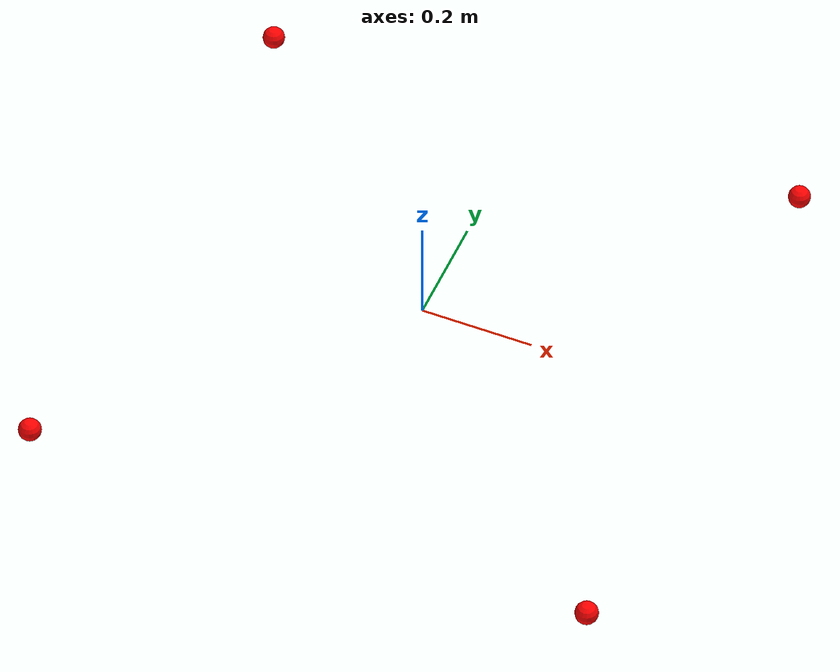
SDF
<?xml version='1.0'?>
<sdf version="1.6">
<model name="magic_leds_0">
  <static>true</static>
    <link name="link">
      <visual name="visual">
        <geometry>
          <mesh>
            <uri>model://magic_leds_0/magic_leds_0.dae</uri>
          </mesh>
        </geometry>
      </visual>
    </link>
  </model>
</sdf>
